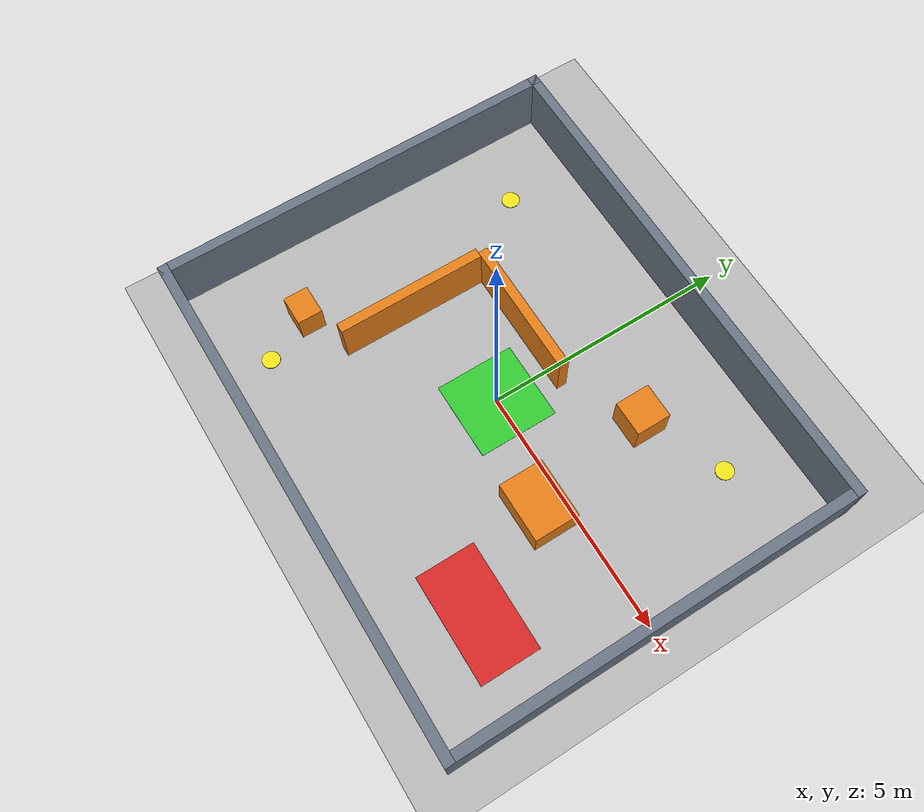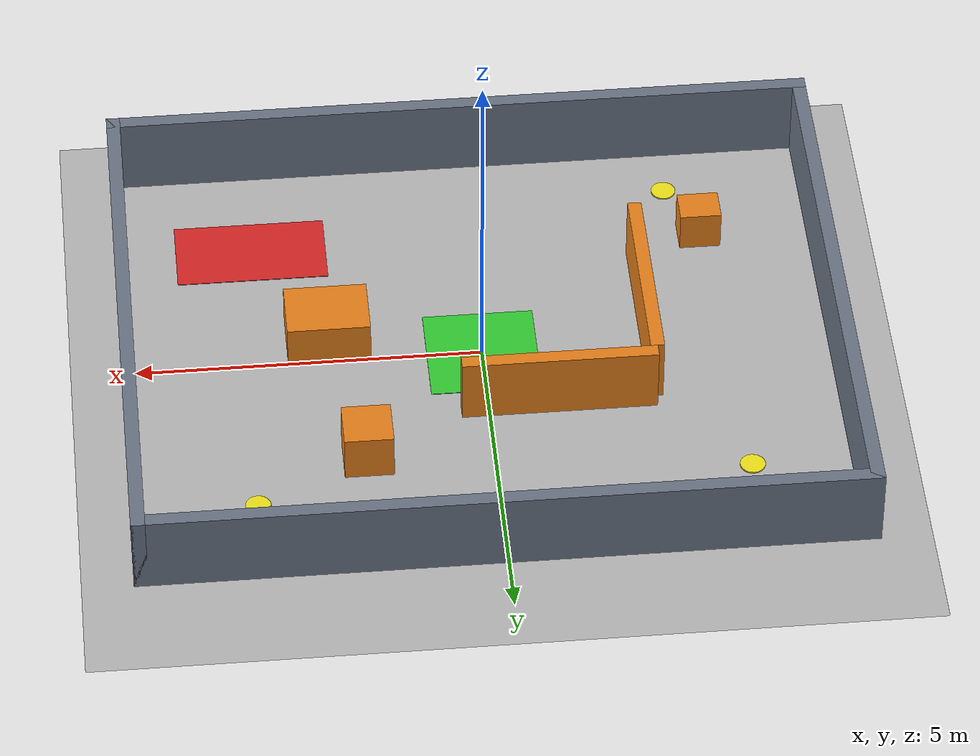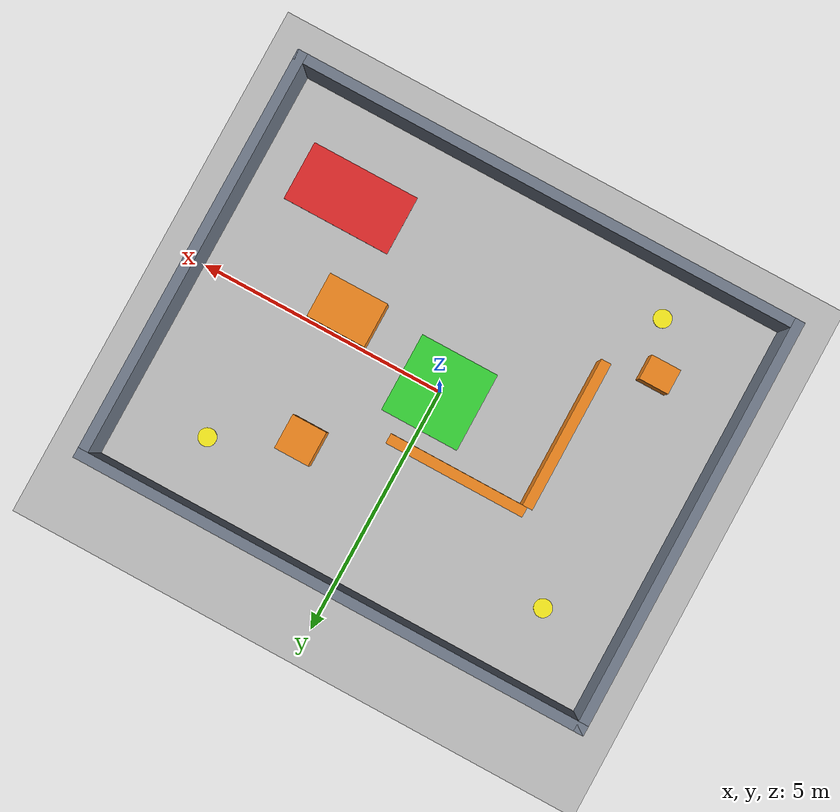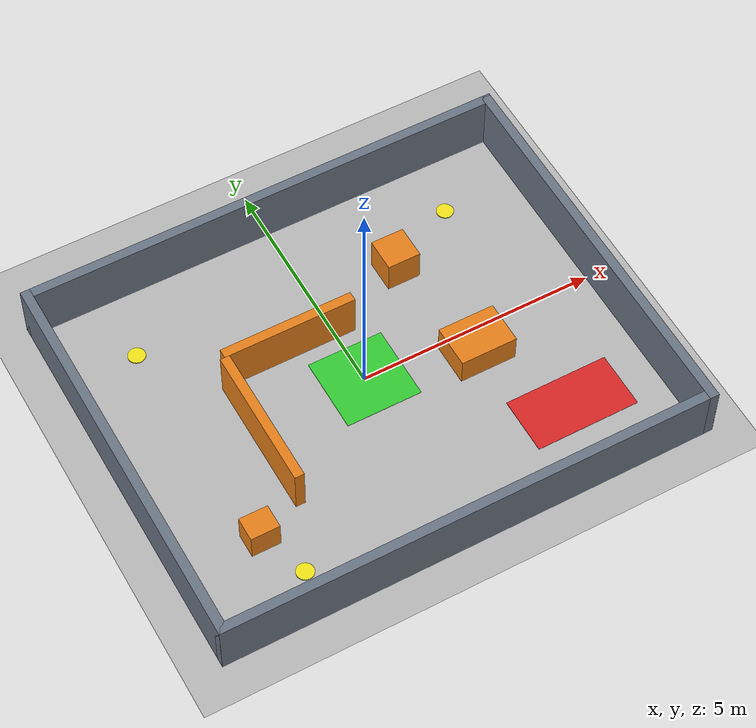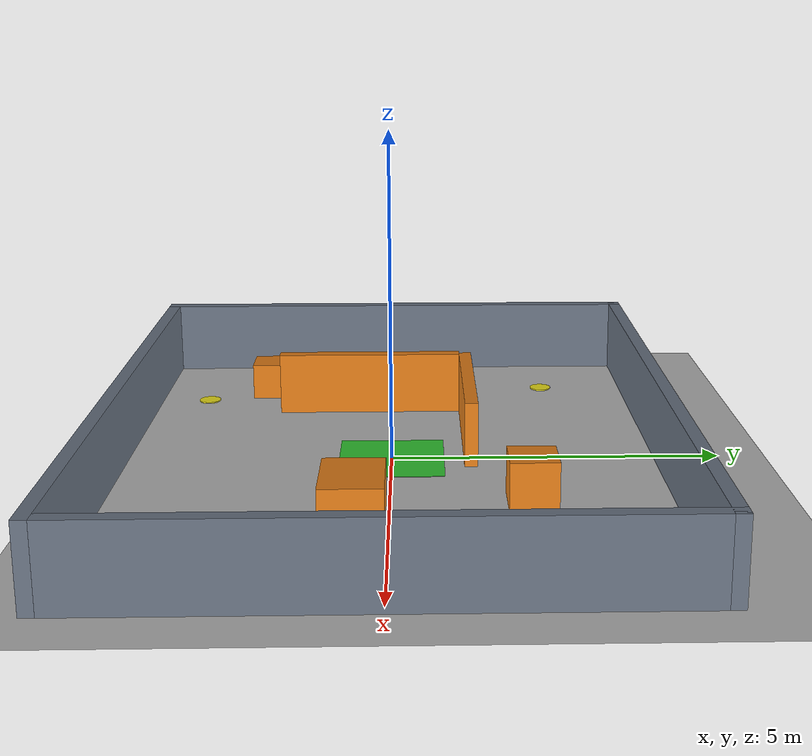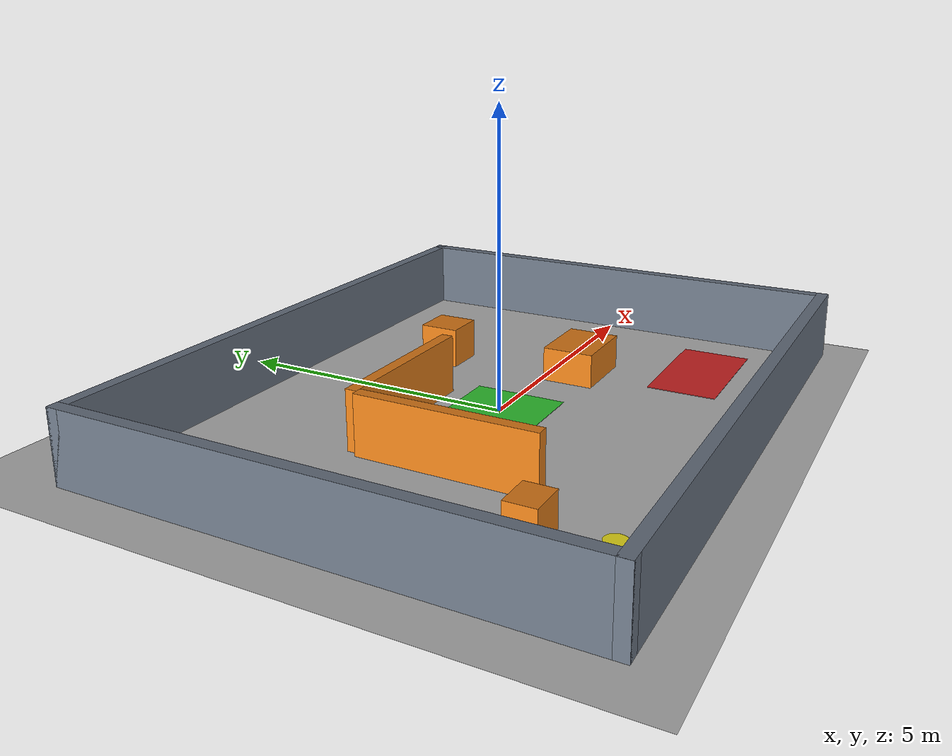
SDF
<?xml version="1.0"?>
<sdf version="1.6">
  <world name="simple_world">

    <light type="directional" name="sun">
      <cast_shadows>true</cast_shadows>
      <pose>0 0 10 0 0 0</pose>
      <diffuse>0.8 0.8 0.8 1</diffuse>
      <specular>0.2 0.2 0.2 1</specular>
      <direction>-0.5 0.1 -0.9</direction>
    </light>

    <physics type="ode">
      <max_step_size>0.001</max_step_size>
      <real_time_factor>1</real_time_factor>
      <real_time_update_rate>1000</real_time_update_rate>
    </physics>

    <!-- ================= 地面（浅灰） ================= -->
    <model name="ground_plane">
      <static>true</static>
      <link name="link">
        <collision name="collision">
          <geometry>
            <plane><normal>0 0 1</normal><size>20 16</size></plane>
          </geometry>
        </collision>
        <visual name="visual">
          <geometry>
            <plane><normal>0 0 1</normal><size>20 16</size></plane>
          </geometry>
          <material>
            <ambient>0.72 0.72 0.72 1</ambient>
            <diffuse>0.72 0.72 0.72 1</diffuse>
            <specular>0.01 0.01 0.01 1</specular>
          </material>
        </visual>
      </link>
    </model>

    <!-- ================= 四周外墙（蓝灰） ================= -->
    <model name="wall_north">
      <static>true</static>
      <pose>0 4.1 0.6 0 0 0</pose>
      <link name="link">
        <collision name="collision">
          <geometry><box><size>10.4 0.2 1.2</size></box></geometry>
        </collision>
        <visual name="visual">
          <geometry><box><size>10.4 0.2 1.2</size></box></geometry>
          <material>
            <ambient>0.42 0.46 0.52 1</ambient>
            <diffuse>0.42 0.46 0.52 1</diffuse>
          </material>
        </visual>
      </link>
    </model>
    <model name="wall_south">
      <static>true</static>
      <pose>0 -4.1 0.6 0 0 0</pose>
      <link name="link">
        <collision name="collision">
          <geometry><box><size>10.4 0.2 1.2</size></box></geometry>
        </collision>
        <visual name="visual">
          <geometry><box><size>10.4 0.2 1.2</size></box></geometry>
          <material>
            <ambient>0.42 0.46 0.52 1</ambient>
            <diffuse>0.42 0.46 0.52 1</diffuse>
          </material>
        </visual>
      </link>
    </model>
    <model name="wall_east">
      <static>true</static>
      <pose>5.1 0 0.6 0 0 0</pose>
      <link name="link">
        <collision name="collision">
          <geometry><box><size>0.2 8.4 1.2</size></box></geometry>
        </collision>
        <visual name="visual">
          <geometry><box><size>0.2 8.4 1.2</size></box></geometry>
          <material>
            <ambient>0.42 0.46 0.52 1</ambient>
            <diffuse>0.42 0.46 0.52 1</diffuse>
          </material>
        </visual>
      </link>
    </model>
    <model name="wall_west">
      <static>true</static>
      <pose>-5.1 0 0.6 0 0 0</pose>
      <link name="link">
        <collision name="collision">
          <geometry><box><size>0.2 8.4 1.2</size></box></geometry>
        </collision>
        <visual name="visual">
          <geometry><box><size>0.2 8.4 1.2</size></box></geometry>
          <material>
            <ambient>0.42 0.46 0.52 1</ambient>
            <diffuse>0.42 0.46 0.52 1</diffuse>
          </material>
        </visual>
      </link>
    </model>

    <!-- ================= 起点区（绿，无碰撞） ================= -->
    <model name="start_area">
      <static>true</static>
      <pose>0 0 0.005 0 0 0</pose>
      <link name="link">
        <visual name="visual">
          <geometry><box><size>1.6 1.6 0.01</size></box></geometry>
          <material>
            <ambient>0.2 0.8 0.2 1</ambient>
            <diffuse>0.2 0.8 0.2 1</diffuse>
          </material>
        </visual>
      </link>
    </model>

    <!-- ================= 中央障碍（橙） ================= -->
    <model name="center_obstacle">
      <static>true</static>
      <pose>2.2 -0.5 0.3 0 0 0</pose>
      <link name="link">
        <collision name="collision">
          <geometry><box><size>1.2 0.9 0.6</size></box></geometry>
        </collision>
        <visual name="visual">
          <geometry><box><size>1.2 0.9 0.6</size></box></geometry>
          <material>
            <ambient>0.9 0.5 0.1 1</ambient>
            <diffuse>0.9 0.5 0.1 1</diffuse>
          </material>
        </visual>
      </link>
    </model>

    <!-- ================= 直角弯（L 形转角走廊，橙） ================= -->
    <model name="corner_wall_v">
      <static>true</static>
      <pose>-2.4 -0.4 0.5 0 0 0</pose>
      <link name="link">
        <collision name="collision">
          <geometry><box><size>0.2 3.0 1.0</size></box></geometry>
        </collision>
        <visual name="visual">
          <geometry><box><size>0.2 3.0 1.0</size></box></geometry>
          <material>
            <ambient>0.9 0.5 0.1 1</ambient>
            <diffuse>0.9 0.5 0.1 1</diffuse>
          </material>
        </visual>
      </link>
    </model>
    <model name="corner_wall_h">
      <static>true</static>
      <pose>-1.0 1.2 0.5 0 0 0</pose>
      <link name="link">
        <collision name="collision">
          <geometry><box><size>2.8 0.2 1.0</size></box></geometry>
        </collision>
        <visual name="visual">
          <geometry><box><size>2.8 0.2 1.0</size></box></geometry>
          <material>
            <ambient>0.9 0.5 0.1 1</ambient>
            <diffuse>0.9 0.5 0.1 1</diffuse>
          </material>
        </visual>
      </link>
    </model>

    <!-- ================= 独立箱体 A / B（橙） ================= -->
    <model name="box_a">
      <static>true</static>
      <pose>1.8 2.0 0.35 0 0 0</pose>
      <link name="link">
        <collision name="collision">
          <geometry><box><size>0.7 0.7 0.7</size></box></geometry>
        </collision>
        <visual name="visual">
          <geometry><box><size>0.7 0.7 0.7</size></box></geometry>
          <material>
            <ambient>0.9 0.5 0.1 1</ambient>
            <diffuse>0.9 0.5 0.1 1</diffuse>
          </material>
        </visual>
      </link>
    </model>
    <model name="box_b">
      <static>true</static>
      <pose>-3.4 -2.2 0.3 0 0 0</pose>
      <link name="link">
        <collision name="collision">
          <geometry><box><size>0.6 0.5 0.6</size></box></geometry>
        </collision>
        <visual name="visual">
          <geometry><box><size>0.6 0.5 0.6</size></box></geometry>
          <material>
            <ambient>0.9 0.5 0.1 1</ambient>
            <diffuse>0.9 0.5 0.1 1</diffuse>
          </material>
        </visual>
      </link>
    </model>

    <!-- ================= 危险区（红，无碰撞） ================= -->
    <model name="danger_zone">
      <static>true</static>
      <pose>3.2 -2.4 0.005 0 0 0</pose>
      <link name="link">
        <visual name="visual">
          <geometry><box><size>2.2 1.2 0.01</size></box></geometry>
          <material>
            <ambient>0.85 0.15 0.15 1</ambient>
            <diffuse>0.85 0.15 0.15 1</diffuse>
          </material>
        </visual>
      </link>
    </model>

    <!-- ================= 目标区 1/2/3（黄，无碰撞薄圆柱） ================= -->
    <model name="goal_1">
      <static>true</static>
      <pose>3.4 2.8 0.01 0 0 0</pose>
      <link name="link">
        <visual name="visual">
          <geometry><cylinder><radius>0.18</radius><length>0.02</length></cylinder></geometry>
          <material>
            <ambient>0.95 0.9 0.1 1</ambient>
            <diffuse>0.95 0.9 0.1 1</diffuse>
          </material>
        </visual>
      </link>
    </model>
    <model name="goal_2">
      <static>true</static>
      <pose>-3.6 2.6 0.01 0 0 0</pose>
      <link name="link">
        <visual name="visual">
          <geometry><cylinder><radius>0.18</radius><length>0.02</length></cylinder></geometry>
          <material>
            <ambient>0.95 0.9 0.1 1</ambient>
            <diffuse>0.95 0.9 0.1 1</diffuse>
          </material>
        </visual>
      </link>
    </model>
    <model name="goal_3">
      <static>true</static>
      <pose>-3.0 -3.2 0.01 0 0 0</pose>
      <link name="link">
        <visual name="visual">
          <geometry><cylinder><radius>0.18</radius><length>0.02</length></cylinder></geometry>
          <material>
            <ambient>0.95 0.9 0.1 1</ambient>
            <diffuse>0.95 0.9 0.1 1</diffuse>
          </material>
        </visual>
      </link>
    </model>

  </world>
</sdf>
